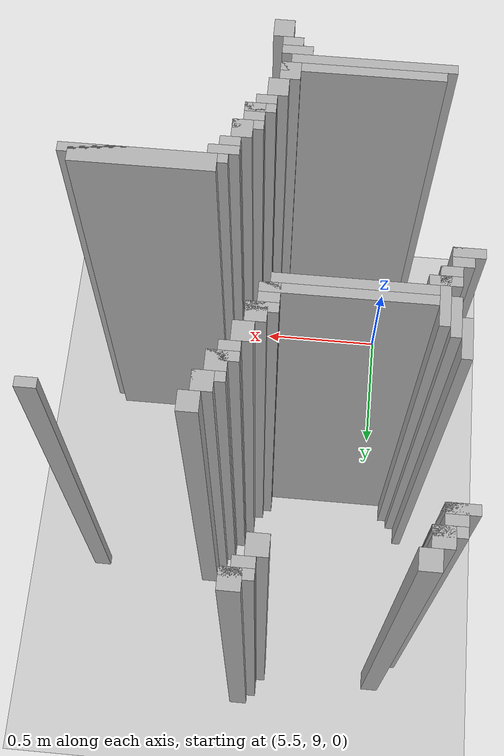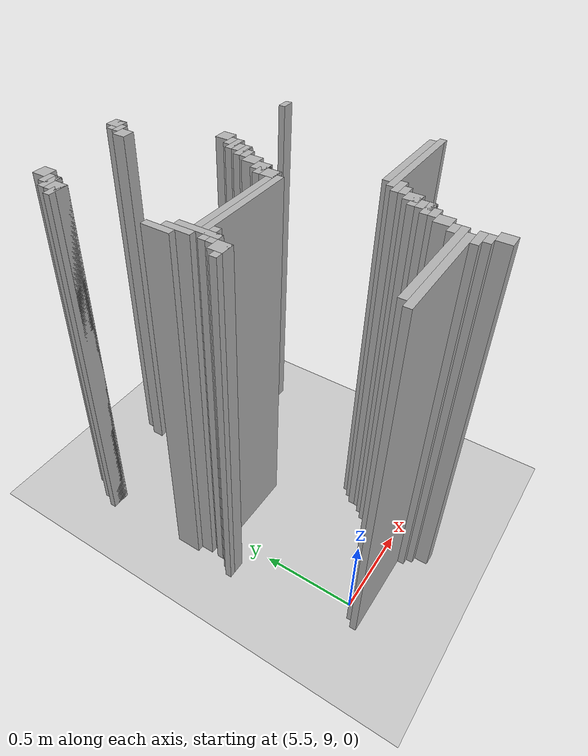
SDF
<sdf version="1.6">
 <world name="slam_world">
  <model name="ground_plane">
   <static>true</static>
   <link name="link">
    <collision name="collision">
     <geometry><plane><normal>0 0 1</normal><size>100 100</size></plane></geometry>
    </collision>
    <visual name="visual">
     <geometry><plane><normal>0 0 1</normal><size>100 100</size></plane></geometry>
     <material>
      <ambient>0.8 0.8 0.8 1</ambient>
      <diffuse>0.8 0.8 0.8 1</diffuse>
      <specular>0.8 0.8 0.8 1</specular>
     </material>
    </visual>
   </link>
  </model>
  <model name="wall_2191">
   <static>true</static>
   <pose>5.986078886310905 10.719257540603248 1.0 0 0 0</pose>
   <link name="link">
    <collision name="collision">
     <geometry><box><size>0.06960556844547564 0.06960556844547564 2.0</size></box></geometry>
    </collision>
    <visual name="visual">
     <geometry><box><size>0.06960556844547564 0.06960556844547564 2.0</size></box></geometry>
     <material><ambient>0.5 0.5 0.5 1</ambient><diffuse>0.7 0.7 0.7 1</diffuse></material>
    </visual>
   </link>
  </model>
  <model name="wall_2200">
   <static>true</static>
   <pose>5.968677494199536 10.70185614849188 1.0 0 0 0</pose>
   <link name="link">
    <collision name="collision">
     <geometry><box><size>0.10440835266821345 0.03480278422273782 2.0</size></box></geometry>
    </collision>
    <visual name="visual">
     <geometry><box><size>0.10440835266821345 0.03480278422273782 2.0</size></box></geometry>
     <material><ambient>0.5 0.5 0.5 1</ambient><diffuse>0.7 0.7 0.7 1</diffuse></material>
    </visual>
   </link>
  </model>
  <model name="wall_2211">
   <static>true</static>
   <pose>5.951276102088166 10.66705336426914 1.0 0 0 0</pose>
   <link name="link">
    <collision name="collision">
     <geometry><box><size>0.06960556844547564 0.03480278422273782 2.0</size></box></geometry>
    </collision>
    <visual name="visual">
     <geometry><box><size>0.06960556844547564 0.03480278422273782 2.0</size></box></geometry>
     <material><ambient>0.5 0.5 0.5 1</ambient><diffuse>0.7 0.7 0.7 1</diffuse></material>
    </visual>
   </link>
  </model>
  <model name="wall_2221">
   <static>true</static>
   <pose>5.4292343387471 10.614849187935034 1.0 0 0 0</pose>
   <link name="link">
    <collision name="collision">
     <geometry><box><size>0.06960556844547564 0.06960556844547564 2.0</size></box></geometry>
    </collision>
    <visual name="visual">
     <geometry><box><size>0.06960556844547564 0.06960556844547564 2.0</size></box></geometry>
     <material><ambient>0.5 0.5 0.5 1</ambient><diffuse>0.7 0.7 0.7 1</diffuse></material>
    </visual>
   </link>
  </model>
  <model name="wall_2222">
   <static>true</static>
   <pose>5.916473317865429 10.614849187935034 1.0 0 0 0</pose>
   <link name="link">
    <collision name="collision">
     <geometry><box><size>0.06960556844547564 0.06960556844547564 2.0</size></box></geometry>
    </collision>
    <visual name="visual">
     <geometry><box><size>0.06960556844547564 0.06960556844547564 2.0</size></box></geometry>
     <material><ambient>0.5 0.5 0.5 1</ambient><diffuse>0.7 0.7 0.7 1</diffuse></material>
    </visual>
   </link>
  </model>
  <model name="wall_2241">
   <static>true</static>
   <pose>5.3944315545243615 10.54524361948956 1.0 0 0 0</pose>
   <link name="link">
    <collision name="collision">
     <geometry><box><size>0.06960556844547564 0.06960556844547564 2.0</size></box></geometry>
    </collision>
    <visual name="visual">
     <geometry><box><size>0.06960556844547564 0.06960556844547564 2.0</size></box></geometry>
     <material><ambient>0.5 0.5 0.5 1</ambient><diffuse>0.7 0.7 0.7 1</diffuse></material>
    </visual>
   </link>
  </model>
  <model name="wall_2258">
   <static>true</static>
   <pose>5.377030162412993 10.52784222737819 1.0 0 0 0</pose>
   <link name="link">
    <collision name="collision">
     <geometry><box><size>0.10440835266821345 0.03480278422273782 2.0</size></box></geometry>
    </collision>
    <visual name="visual">
     <geometry><box><size>0.10440835266821345 0.03480278422273782 2.0</size></box></geometry>
     <material><ambient>0.5 0.5 0.5 1</ambient><diffuse>0.7 0.7 0.7 1</diffuse></material>
    </visual>
   </link>
  </model>
  <model name="wall_2275">
   <static>true</static>
   <pose>5.359628770301624 10.475638051044083 1.0 0 0 0</pose>
   <link name="link">
    <collision name="collision">
     <geometry><box><size>0.06960556844547564 0.06960556844547564 2.0</size></box></geometry>
    </collision>
    <visual name="visual">
     <geometry><box><size>0.06960556844547564 0.06960556844547564 2.0</size></box></geometry>
     <material><ambient>0.5 0.5 0.5 1</ambient><diffuse>0.7 0.7 0.7 1</diffuse></material>
    </visual>
   </link>
  </model>
  <model name="wall_2292">
   <static>true</static>
   <pose>5.342227378190255 10.458236658932714 1.0 0 0 0</pose>
   <link name="link">
    <collision name="collision">
     <geometry><box><size>0.10440835266821345 0.03480278422273782 2.0</size></box></geometry>
    </collision>
    <visual name="visual">
     <geometry><box><size>0.10440835266821345 0.03480278422273782 2.0</size></box></geometry>
     <material><ambient>0.5 0.5 0.5 1</ambient><diffuse>0.7 0.7 0.7 1</diffuse></material>
    </visual>
   </link>
  </model>
  <model name="wall_2374">
   <static>true</static>
   <pose>6.1600928074245935 10.19721577726218 1.0 0 0 0</pose>
   <link name="link">
    <collision name="collision">
     <geometry><box><size>0.06960556844547564 0.06960556844547564 2.0</size></box></geometry>
    </collision>
    <visual name="visual">
     <geometry><box><size>0.06960556844547564 0.06960556844547564 2.0</size></box></geometry>
     <material><ambient>0.5 0.5 0.5 1</ambient><diffuse>0.7 0.7 0.7 1</diffuse></material>
    </visual>
   </link>
  </model>
  <model name="wall_2386">
   <static>true</static>
   <pose>6.647331786542924 10.179814385150811 1.0 0 0 0</pose>
   <link name="link">
    <collision name="collision">
     <geometry><box><size>0.06960556844547564 0.03480278422273782 2.0</size></box></geometry>
    </collision>
    <visual name="visual">
     <geometry><box><size>0.06960556844547564 0.03480278422273782 2.0</size></box></geometry>
     <material><ambient>0.5 0.5 0.5 1</ambient><diffuse>0.7 0.7 0.7 1</diffuse></material>
    </visual>
   </link>
  </model>
  <model name="wall_2396">
   <static>true</static>
   <pose>6.125290023201856 10.127610208816705 1.0 0 0 0</pose>
   <link name="link">
    <collision name="collision">
     <geometry><box><size>0.06960556844547564 0.06960556844547564 2.0</size></box></geometry>
    </collision>
    <visual name="visual">
     <geometry><box><size>0.06960556844547564 0.06960556844547564 2.0</size></box></geometry>
     <material><ambient>0.5 0.5 0.5 1</ambient><diffuse>0.7 0.7 0.7 1</diffuse></material>
    </visual>
   </link>
  </model>
  <model name="wall_2412">
   <static>true</static>
   <pose>6.107888631090487 10.110208816705336 1.0 0 0 0</pose>
   <link name="link">
    <collision name="collision">
     <geometry><box><size>0.10440835266821345 0.03480278422273782 2.0</size></box></geometry>
    </collision>
    <visual name="visual">
     <geometry><box><size>0.10440835266821345 0.03480278422273782 2.0</size></box></geometry>
     <material><ambient>0.5 0.5 0.5 1</ambient><diffuse>0.7 0.7 0.7 1</diffuse></material>
    </visual>
   </link>
  </model>
  <model name="wall_2428">
   <static>true</static>
   <pose>6.090487238979118 10.058004640371228 1.0 0 0 0</pose>
   <link name="link">
    <collision name="collision">
     <geometry><box><size>0.06960556844547564 0.06960556844547564 2.0</size></box></geometry>
    </collision>
    <visual name="visual">
     <geometry><box><size>0.06960556844547564 0.06960556844547564 2.0</size></box></geometry>
     <material><ambient>0.5 0.5 0.5 1</ambient><diffuse>0.7 0.7 0.7 1</diffuse></material>
    </visual>
   </link>
  </model>
  <model name="wall_2444">
   <static>true</static>
   <pose>6.073085846867749 10.04060324825986 1.0 0 0 0</pose>
   <link name="link">
    <collision name="collision">
     <geometry><box><size>0.10440835266821345 0.03480278422273782 2.0</size></box></geometry>
    </collision>
    <visual name="visual">
     <geometry><box><size>0.10440835266821345 0.03480278422273782 2.0</size></box></geometry>
     <material><ambient>0.5 0.5 0.5 1</ambient><diffuse>0.7 0.7 0.7 1</diffuse></material>
    </visual>
   </link>
  </model>
  <model name="wall_2457">
   <static>true</static>
   <pose>6.05568445475638 10.005800464037122 1.0 0 0 0</pose>
   <link name="link">
    <collision name="collision">
     <geometry><box><size>0.06960556844547564 0.03480278422273782 2.0</size></box></geometry>
    </collision>
    <visual name="visual">
     <geometry><box><size>0.06960556844547564 0.03480278422273782 2.0</size></box></geometry>
     <material><ambient>0.5 0.5 0.5 1</ambient><diffuse>0.7 0.7 0.7 1</diffuse></material>
    </visual>
   </link>
  </model>
  <model name="wall_2468">
   <static>true</static>
   <pose>5.342227378190255 9.918793503480279 1.0 0 0 0</pose>
   <link name="link">
    <collision name="collision">
     <geometry><box><size>0.03480278422273782 0.13921113689095127 2.0</size></box></geometry>
    </collision>
    <visual name="visual">
     <geometry><box><size>0.03480278422273782 0.13921113689095127 2.0</size></box></geometry>
     <material><ambient>0.5 0.5 0.5 1</ambient><diffuse>0.7 0.7 0.7 1</diffuse></material>
    </visual>
   </link>
  </model>
  <model name="wall_2469">
   <static>true</static>
   <pose>6.020881670533642 9.953596287703016 1.0 0 0 0</pose>
   <link name="link">
    <collision name="collision">
     <geometry><box><size>0.06960556844547564 0.06960556844547564 2.0</size></box></geometry>
    </collision>
    <visual name="visual">
     <geometry><box><size>0.06960556844547564 0.06960556844547564 2.0</size></box></geometry>
     <material><ambient>0.5 0.5 0.5 1</ambient><diffuse>0.7 0.7 0.7 1</diffuse></material>
    </visual>
   </link>
  </model>
  <model name="wall_2484">
   <static>true</static>
   <pose>5.377030162412993 9.849187935034802 1.0 0 0 0</pose>
   <link name="link">
    <collision name="collision">
     <geometry><box><size>0.03480278422273782 0.13921113689095127 2.0</size></box></geometry>
    </collision>
    <visual name="visual">
     <geometry><box><size>0.03480278422273782 0.13921113689095127 2.0</size></box></geometry>
     <material><ambient>0.5 0.5 0.5 1</ambient><diffuse>0.7 0.7 0.7 1</diffuse></material>
    </visual>
   </link>
  </model>
  <model name="wall_2485">
   <static>true</static>
   <pose>5.986078886310905 9.88399071925754 1.0 0 0 0</pose>
   <link name="link">
    <collision name="collision">
     <geometry><box><size>0.06960556844547564 0.06960556844547564 2.0</size></box></geometry>
    </collision>
    <visual name="visual">
     <geometry><box><size>0.06960556844547564 0.06960556844547564 2.0</size></box></geometry>
     <material><ambient>0.5 0.5 0.5 1</ambient><diffuse>0.7 0.7 0.7 1</diffuse></material>
    </visual>
   </link>
  </model>
  <model name="wall_2500">
   <static>true</static>
   <pose>5.41183294663573 9.779582366589327 1.0 0 0 0</pose>
   <link name="link">
    <collision name="collision">
     <geometry><box><size>0.03480278422273782 0.2088167053364269 2.0</size></box></geometry>
    </collision>
    <visual name="visual">
     <geometry><box><size>0.03480278422273782 0.2088167053364269 2.0</size></box></geometry>
     <material><ambient>0.5 0.5 0.5 1</ambient><diffuse>0.7 0.7 0.7 1</diffuse></material>
    </visual>
   </link>
  </model>
  <model name="wall_2501">
   <static>true</static>
   <pose>5.968677494199536 9.86658932714617 1.0 0 0 0</pose>
   <link name="link">
    <collision name="collision">
     <geometry><box><size>0.10440835266821345 0.03480278422273782 2.0</size></box></geometry>
    </collision>
    <visual name="visual">
     <geometry><box><size>0.10440835266821345 0.03480278422273782 2.0</size></box></geometry>
     <material><ambient>0.5 0.5 0.5 1</ambient><diffuse>0.7 0.7 0.7 1</diffuse></material>
    </visual>
   </link>
  </model>
  <model name="wall_2514">
   <static>true</static>
   <pose>5.951276102088166 9.814385150812065 1.0 0 0 0</pose>
   <link name="link">
    <collision name="collision">
     <geometry><box><size>0.06960556844547564 0.06960556844547564 2.0</size></box></geometry>
    </collision>
    <visual name="visual">
     <geometry><box><size>0.06960556844547564 0.06960556844547564 2.0</size></box></geometry>
     <material><ambient>0.5 0.5 0.5 1</ambient><diffuse>0.7 0.7 0.7 1</diffuse></material>
    </visual>
   </link>
  </model>
  <model name="wall_2524">
   <static>true</static>
   <pose>5.707656612529002 9.796983758700696 1.0 0 0 0</pose>
   <link name="link">
    <collision name="collision">
     <geometry><box><size>0.5568445475638051 0.03480278422273782 2.0</size></box></geometry>
    </collision>
    <visual name="visual">
     <geometry><box><size>0.5568445475638051 0.03480278422273782 2.0</size></box></geometry>
     <material><ambient>0.5 0.5 0.5 1</ambient><diffuse>0.7 0.7 0.7 1</diffuse></material>
    </visual>
   </link>
  </model>
  <model name="wall_2537">
   <static>true</static>
   <pose>5.690255220417633 9.762180974477959 1.0 0 0 0</pose>
   <link name="link">
    <collision name="collision">
     <geometry><box><size>0.5220417633410672 0.03480278422273782 2.0</size></box></geometry>
    </collision>
    <visual name="visual">
     <geometry><box><size>0.5220417633410672 0.03480278422273782 2.0</size></box></geometry>
     <material><ambient>0.5 0.5 0.5 1</ambient><diffuse>0.7 0.7 0.7 1</diffuse></material>
    </visual>
   </link>
  </model>
  <model name="wall_2545">
   <static>true</static>
   <pose>5.41183294663573 9.72737819025522 1.0 0 0 0</pose>
   <link name="link">
    <collision name="collision">
     <geometry><box><size>0.10440835266821345 0.03480278422273782 2.0</size></box></geometry>
    </collision>
    <visual name="visual">
     <geometry><box><size>0.10440835266821345 0.03480278422273782 2.0</size></box></geometry>
     <material><ambient>0.5 0.5 0.5 1</ambient><diffuse>0.7 0.7 0.7 1</diffuse></material>
    </visual>
   </link>
  </model>
  <model name="wall_2555">
   <static>true</static>
   <pose>5.3944315545243615 9.692575406032482 1.0 0 0 0</pose>
   <link name="link">
    <collision name="collision">
     <geometry><box><size>0.06960556844547564 0.03480278422273782 2.0</size></box></geometry>
    </collision>
    <visual name="visual">
     <geometry><box><size>0.06960556844547564 0.03480278422273782 2.0</size></box></geometry>
     <material><ambient>0.5 0.5 0.5 1</ambient><diffuse>0.7 0.7 0.7 1</diffuse></material>
    </visual>
   </link>
  </model>
  <model name="wall_2562">
   <static>true</static>
   <pose>5.359628770301624 9.640371229698376 1.0 0 0 0</pose>
   <link name="link">
    <collision name="collision">
     <geometry><box><size>0.06960556844547564 0.06960556844547564 2.0</size></box></geometry>
    </collision>
    <visual name="visual">
     <geometry><box><size>0.06960556844547564 0.06960556844547564 2.0</size></box></geometry>
     <material><ambient>0.5 0.5 0.5 1</ambient><diffuse>0.7 0.7 0.7 1</diffuse></material>
    </visual>
   </link>
  </model>
  <model name="wall_2573">
   <static>true</static>
   <pose>5.342227378190255 9.622969837587007 1.0 0 0 0</pose>
   <link name="link">
    <collision name="collision">
     <geometry><box><size>0.10440835266821345 0.03480278422273782 2.0</size></box></geometry>
    </collision>
    <visual name="visual">
     <geometry><box><size>0.10440835266821345 0.03480278422273782 2.0</size></box></geometry>
     <material><ambient>0.5 0.5 0.5 1</ambient><diffuse>0.7 0.7 0.7 1</diffuse></material>
    </visual>
   </link>
  </model>
  <model name="wall_2636">
   <static>true</static>
   <pose>6.403712296983758 9.361948955916473 1.0 0 0 0</pose>
   <link name="link">
    <collision name="collision">
     <geometry><box><size>0.4872389791183295 0.06960556844547564 2.0</size></box></geometry>
    </collision>
    <visual name="visual">
     <geometry><box><size>0.4872389791183295 0.06960556844547564 2.0</size></box></geometry>
     <material><ambient>0.5 0.5 0.5 1</ambient><diffuse>0.7 0.7 0.7 1</diffuse></material>
    </visual>
   </link>
  </model>
  <model name="wall_2649">
   <static>true</static>
   <pose>6.403712296983758 9.344547563805104 1.0 0 0 0</pose>
   <link name="link">
    <collision name="collision">
     <geometry><box><size>0.5568445475638051 0.03480278422273782 2.0</size></box></geometry>
    </collision>
    <visual name="visual">
     <geometry><box><size>0.5568445475638051 0.03480278422273782 2.0</size></box></geometry>
     <material><ambient>0.5 0.5 0.5 1</ambient><diffuse>0.7 0.7 0.7 1</diffuse></material>
    </visual>
   </link>
  </model>
  <model name="wall_2662">
   <static>true</static>
   <pose>6.142691415313225 9.309744779582367 1.0 0 0 0</pose>
   <link name="link">
    <collision name="collision">
     <geometry><box><size>0.10440835266821345 0.03480278422273782 2.0</size></box></geometry>
    </collision>
    <visual name="visual">
     <geometry><box><size>0.10440835266821345 0.03480278422273782 2.0</size></box></geometry>
     <material><ambient>0.5 0.5 0.5 1</ambient><diffuse>0.7 0.7 0.7 1</diffuse></material>
    </visual>
   </link>
  </model>
  <model name="wall_2679">
   <static>true</static>
   <pose>6.125290023201856 9.274941995359628 1.0 0 0 0</pose>
   <link name="link">
    <collision name="collision">
     <geometry><box><size>0.06960556844547564 0.03480278422273782 2.0</size></box></geometry>
    </collision>
    <visual name="visual">
     <geometry><box><size>0.06960556844547564 0.03480278422273782 2.0</size></box></geometry>
     <material><ambient>0.5 0.5 0.5 1</ambient><diffuse>0.7 0.7 0.7 1</diffuse></material>
    </visual>
   </link>
  </model>
  <model name="wall_2693">
   <static>true</static>
   <pose>6.090487238979118 9.222737819025522 1.0 0 0 0</pose>
   <link name="link">
    <collision name="collision">
     <geometry><box><size>0.06960556844547564 0.06960556844547564 2.0</size></box></geometry>
    </collision>
    <visual name="visual">
     <geometry><box><size>0.06960556844547564 0.06960556844547564 2.0</size></box></geometry>
     <material><ambient>0.5 0.5 0.5 1</ambient><diffuse>0.7 0.7 0.7 1</diffuse></material>
    </visual>
   </link>
  </model>
  <model name="wall_2711">
   <static>true</static>
   <pose>6.073085846867749 9.205336426914153 1.0 0 0 0</pose>
   <link name="link">
    <collision name="collision">
     <geometry><box><size>0.10440835266821345 0.03480278422273782 2.0</size></box></geometry>
    </collision>
    <visual name="visual">
     <geometry><box><size>0.10440835266821345 0.03480278422273782 2.0</size></box></geometry>
     <material><ambient>0.5 0.5 0.5 1</ambient><diffuse>0.7 0.7 0.7 1</diffuse></material>
    </visual>
   </link>
  </model>
  <model name="wall_2727">
   <static>true</static>
   <pose>6.05568445475638 9.153132250580047 1.0 0 0 0</pose>
   <link name="link">
    <collision name="collision">
     <geometry><box><size>0.06960556844547564 0.06960556844547564 2.0</size></box></geometry>
    </collision>
    <visual name="visual">
     <geometry><box><size>0.06960556844547564 0.06960556844547564 2.0</size></box></geometry>
     <material><ambient>0.5 0.5 0.5 1</ambient><diffuse>0.7 0.7 0.7 1</diffuse></material>
    </visual>
   </link>
  </model>
  <model name="wall_2741">
   <static>true</static>
   <pose>6.038283062645012 9.135730858468676 1.0 0 0 0</pose>
   <link name="link">
    <collision name="collision">
     <geometry><box><size>0.10440835266821345 0.03480278422273782 2.0</size></box></geometry>
    </collision>
    <visual name="visual">
     <geometry><box><size>0.10440835266821345 0.03480278422273782 2.0</size></box></geometry>
     <material><ambient>0.5 0.5 0.5 1</ambient><diffuse>0.7 0.7 0.7 1</diffuse></material>
    </visual>
   </link>
  </model>
  <model name="wall_2756">
   <static>true</static>
   <pose>6.020881670533642 9.100928074245939 1.0 0 0 0</pose>
   <link name="link">
    <collision name="collision">
     <geometry><box><size>0.06960556844547564 0.03480278422273782 2.0</size></box></geometry>
    </collision>
    <visual name="visual">
     <geometry><box><size>0.06960556844547564 0.03480278422273782 2.0</size></box></geometry>
     <material><ambient>0.5 0.5 0.5 1</ambient><diffuse>0.7 0.7 0.7 1</diffuse></material>
    </visual>
   </link>
  </model>
  <model name="wall_2770">
   <static>true</static>
   <pose>5.986078886310905 9.048723897911833 1.0 0 0 0</pose>
   <link name="link">
    <collision name="collision">
     <geometry><box><size>0.06960556844547564 0.06960556844547564 2.0</size></box></geometry>
    </collision>
    <visual name="visual">
     <geometry><box><size>0.06960556844547564 0.06960556844547564 2.0</size></box></geometry>
     <material><ambient>0.5 0.5 0.5 1</ambient><diffuse>0.7 0.7 0.7 1</diffuse></material>
    </visual>
   </link>
  </model>
  <model name="wall_2788">
   <static>true</static>
   <pose>5.951276102088166 8.979118329466356 1.0 0 0 0</pose>
   <link name="link">
    <collision name="collision">
     <geometry><box><size>0.06960556844547564 0.06960556844547564 2.0</size></box></geometry>
    </collision>
    <visual name="visual">
     <geometry><box><size>0.06960556844547564 0.06960556844547564 2.0</size></box></geometry>
     <material><ambient>0.5 0.5 0.5 1</ambient><diffuse>0.7 0.7 0.7 1</diffuse></material>
    </visual>
   </link>
  </model>
  <model name="wall_2803">
   <static>true</static>
   <pose>5.707656612529002 8.961716937354987 1.0 0 0 0</pose>
   <link name="link">
    <collision name="collision">
     <geometry><box><size>0.5568445475638051 0.03480278422273782 2.0</size></box></geometry>
    </collision>
    <visual name="visual">
     <geometry><box><size>0.5568445475638051 0.03480278422273782 2.0</size></box></geometry>
     <material><ambient>0.5 0.5 0.5 1</ambient><diffuse>0.7 0.7 0.7 1</diffuse></material>
    </visual>
   </link>
  </model>
  <model name="wall_2817">
   <static>true</static>
   <pose>5.672853828306264 8.92691415313225 1.0 0 0 0</pose>
   <link name="link">
    <collision name="collision">
     <geometry><box><size>0.5568445475638051 0.03480278422273782 2.0</size></box></geometry>
    </collision>
    <visual name="visual">
     <geometry><box><size>0.5568445475638051 0.03480278422273782 2.0</size></box></geometry>
     <material><ambient>0.5 0.5 0.5 1</ambient><diffuse>0.7 0.7 0.7 1</diffuse></material>
    </visual>
   </link>
  </model>
  <model name="wall_2831">
   <static>true</static>
   <pose>5.933874709976798 8.892111368909513 1.0 0 0 0</pose>
   <link name="link">
    <collision name="collision">
     <geometry><box><size>0.10440835266821345 0.03480278422273782 2.0</size></box></geometry>
    </collision>
    <visual name="visual">
     <geometry><box><size>0.10440835266821345 0.03480278422273782 2.0</size></box></geometry>
     <material><ambient>0.5 0.5 0.5 1</ambient><diffuse>0.7 0.7 0.7 1</diffuse></material>
    </visual>
   </link>
  </model>
  <model name="wall_2849">
   <static>true</static>
   <pose>5.951276102088166 8.857308584686775 1.0 0 0 0</pose>
   <link name="link">
    <collision name="collision">
     <geometry><box><size>0.06960556844547564 0.03480278422273782 2.0</size></box></geometry>
    </collision>
    <visual name="visual">
     <geometry><box><size>0.06960556844547564 0.03480278422273782 2.0</size></box></geometry>
     <material><ambient>0.5 0.5 0.5 1</ambient><diffuse>0.7 0.7 0.7 1</diffuse></material>
    </visual>
   </link>
  </model>
  <model name="wall_2864">
   <static>true</static>
   <pose>5.986078886310905 8.805104408352667 1.0 0 0 0</pose>
   <link name="link">
    <collision name="collision">
     <geometry><box><size>0.06960556844547564 0.06960556844547564 2.0</size></box></geometry>
    </collision>
    <visual name="visual">
     <geometry><box><size>0.06960556844547564 0.06960556844547564 2.0</size></box></geometry>
     <material><ambient>0.5 0.5 0.5 1</ambient><diffuse>0.7 0.7 0.7 1</diffuse></material>
    </visual>
   </link>
  </model>
 </world>
</sdf>
